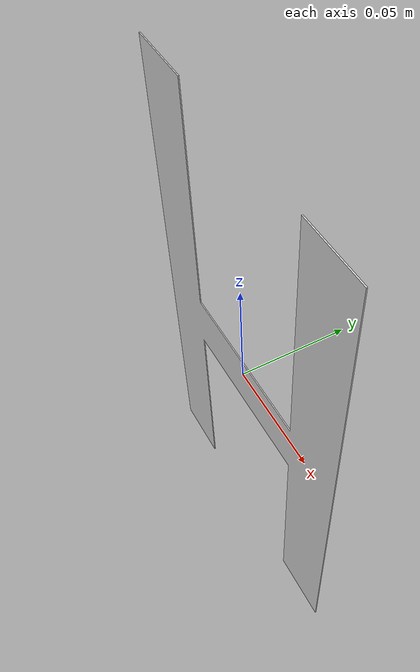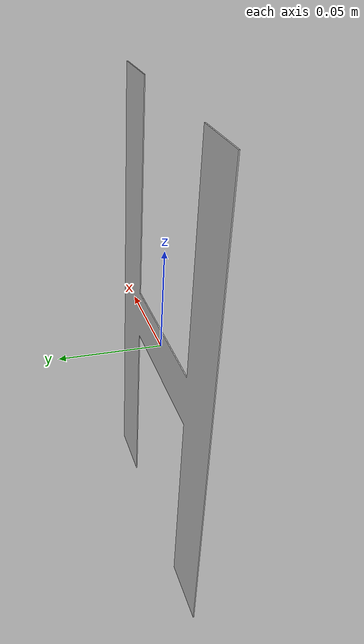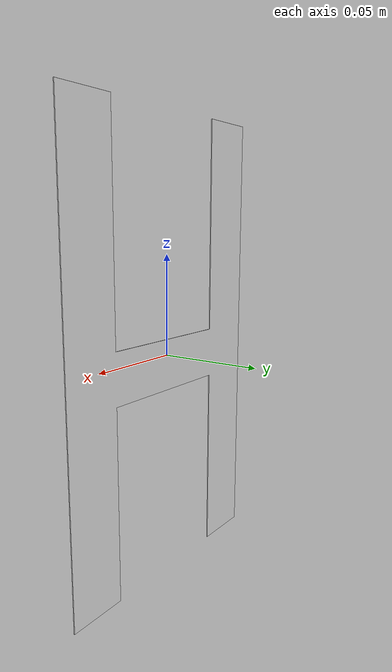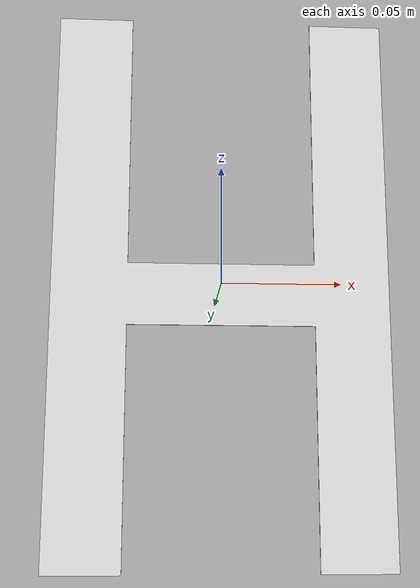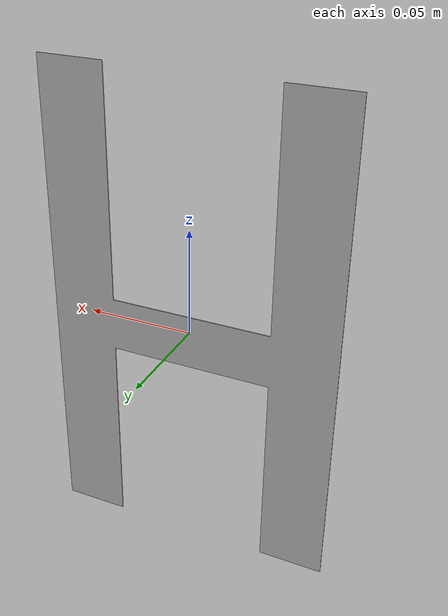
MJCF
<mujoco model="scene_H_edit">
  <compiler angle="degree" meshdir="meshes" texturedir="textures"/>
  <option gravity="0 0 -9.81"/>
  <default>
    <joint armature="0.01" damping="0.5"/>
    <default class="visual">
      <geom contype="0" conaffinity="0" group="2"/>
    </default>
    <default class="collision">
      <geom rgba="0.9 0.9 0.0 0.2" group="3"/>
    </default>
  </default>
  <asset>
    <material name="M_mat0_008" rgba="0.8471 0.8471 0.8471 1.0000"/>
    <mesh name="ImagetostlMesh0007" file="ImagetostlMesh0007.obj" inertia="shell"/>
  </asset>
  <worldbody>
    <body name="imagetostl_mesh_0_007" pos="0.000000 0.000000 0.000000">
      <geom type="mesh" mesh="ImagetostlMesh0007" class="visual" material="M_mat0_008"/>
      <geom name="imagetostl_mesh_0007_aabb" type="box" pos="-0.0000 0.0000 0.0007" size="0.0702 0.0050 0.1166" class="collision"/>
    </body>
  </worldbody>
</mujoco>
